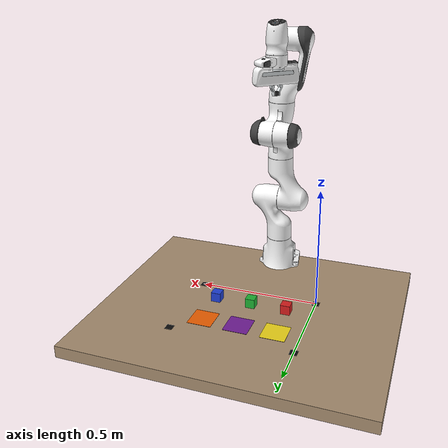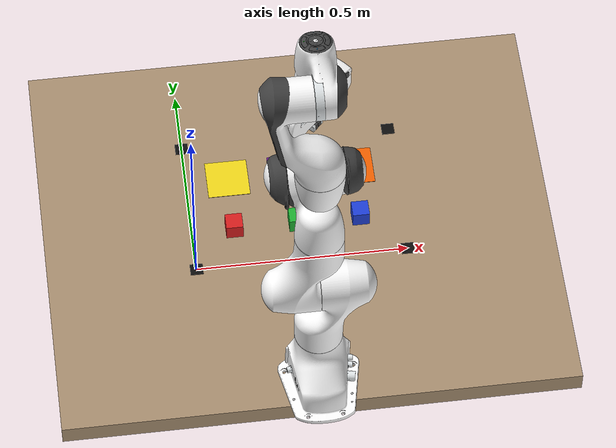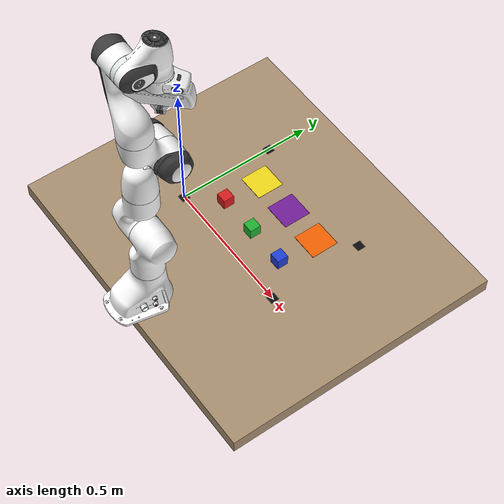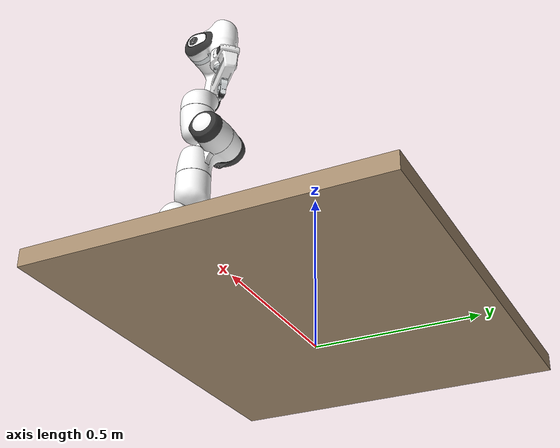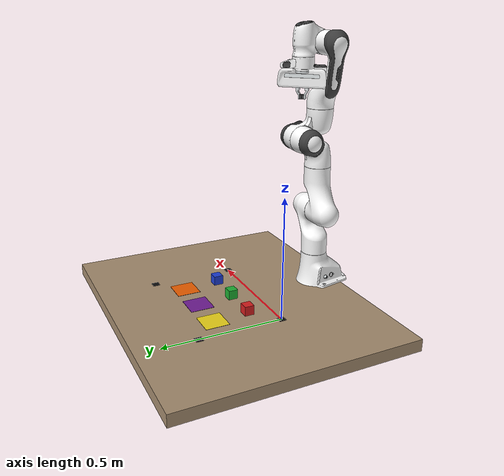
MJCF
<mujoco model="pickplace scene">
  <include file="franka_emika_panda/panda.xml"/>

  <option timestep="0.002" integrator="implicitfast" cone="elliptic" impratio="10"/>

  <visual>
    <headlight diffuse="0.25 0.25 0.25" ambient="0.25 0.25 0.25" specular="0 0 0"/>
    <global offwidth="960" offheight="960"/>
    <quality shadowsize="2048"/>
  </visual>

  <asset>
    <texture type="skybox" builtin="gradient" rgb1="0.75 0.8 0.85" rgb2="0.35 0.4 0.45" width="256" height="1536"/>
    <texture name="wood" type="2d" builtin="flat" rgb1="0.66 0.56 0.44" width="64" height="64"/>
    <material name="table" texture="wood" rgba="1 1 1 1"/>
    <material name="m_red" rgba="0.85 0.12 0.12 1"/>
    <material name="m_green" rgba="0.12 0.7 0.2 1"/>
    <material name="m_blue" rgba="0.12 0.25 0.85 1"/>
    <material name="m_yellow" rgba="0.95 0.85 0.1 1"/>
    <material name="m_purple" rgba="0.45 0.12 0.6 1"/>
    <material name="m_orange" rgba="0.95 0.38 0.0 1"/>
    <material name="marker" rgba="0.05 0.05 0.05 1"/>
  </asset>

  <default>
    <default class="cube">
      <geom type="box" size="0.02 0.02 0.02" mass="0.05" friction="1.5 0.02 0.001" condim="4"
            solref="0.004 1"/>
    </default>
    <default class="zone">
      <geom type="box" size="0.05 0.05 0.0005" contype="0" conaffinity="0"/>
    </default>
  </default>

  <worldbody>
    <light pos="0.25 0.2 1.8" dir="0 0 -1" directional="true" castshadow="true" diffuse="0.45 0.45 0.45"/>
    <body name="table" pos="0.25 0.1 -0.025">
      <geom name="table" type="box" size="0.6 0.5 0.025" material="table" friction="1 0.005 0.0001"/>
    </body>

    <!-- workspace corner markers (visual only) -->
    <geom type="box" size="0.015 0.015 0.0003" pos="0 0 0.0003" material="marker" contype="0" conaffinity="0"/>
    <geom type="box" size="0.015 0.015 0.0003" pos="0.5 0 0.0003" material="marker" contype="0" conaffinity="0"/>
    <geom type="box" size="0.015 0.015 0.0003" pos="0.5 0.35 0.0003" material="marker" contype="0" conaffinity="0"/>
    <geom type="box" size="0.015 0.015 0.0003" pos="0 0.35 0.0003" material="marker" contype="0" conaffinity="0"/>

    <!-- target zones: mocap bodies, so reset() can move them -->
    <body name="zone_yellow" mocap="true" pos="0.1 0.25 0.0005"><geom class="zone" material="m_yellow"/></body>
    <body name="zone_purple" mocap="true" pos="0.25 0.25 0.0005"><geom class="zone" material="m_purple"/></body>
    <body name="zone_orange" mocap="true" pos="0.4 0.25 0.0005"><geom class="zone" material="m_orange"/></body>

    <body name="cube_red" pos="0.1 0.1 0.02"><freejoint name="cube_red"/><geom class="cube" material="m_red"/></body>
    <body name="cube_green" pos="0.25 0.1 0.02"><freejoint name="cube_green"/><geom class="cube" material="m_green"/></body>
    <body name="cube_blue" pos="0.4 0.1 0.02"><freejoint name="cube_blue"/><geom class="cube" material="m_blue"/></body>

    <body name="cam_target" pos="0.25 0.15 0.05"/>
    <camera name="top" pos="0.25 0.175 1.2" xyaxes="1 0 0 0 1 0" fovy="45"/>
    <camera name="phone" pos="0.25 0.55 0.95" xyaxes="-1 0 0 0 -0.9251 0.3798" fovy="40"/>
    <!-- "scene" (env v2 images): framed so the workspace box (+2 cm, up to 16 cm carry height) just fills the
         square image; rendered at 512 px. Computed in NOTES.md. -->
    <camera name="scene" pos="0.25 0.55 0.95" xyaxes="-1.0000 -0.0000 0.0000 0.0000 -0.9543 0.2989" fovy="38.0"/>
    <!-- "phone_match": pose set at runtime from the real phone's ArUco-estimated pose (human/camera_match.py) -->
    <camera name="phone_match" pos="0.25 0.175 0.45" xyaxes="1 0 0 0 1 0" fovy="90"/>
    <camera name="front" pos="0.25 1.05 0.65" mode="targetbody" target="cam_target" fovy="45"/>
  </worldbody>

  <contact>
    <exclude body1="table" body2="link0"/>
    <exclude body1="table" body2="link1"/>
  </contact>
</mujoco>

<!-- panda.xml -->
<mujoco model="panda">
  <compiler angle="radian" meshdir="franka_emika_panda/assets" autolimits="true"/>

  <option integrator="implicitfast"/>

  <default>
    <default class="panda">
      <material specular="0.5" shininess="0.25"/>
      <joint armature="0.1" damping="1" axis="0 0 1" range="-2.8973 2.8973"/>
      <general dyntype="none" biastype="affine" ctrlrange="-2.8973 2.8973" forcerange="-87 87"/>
      <default class="finger">
        <joint axis="0 1 0" type="slide" range="0 0.04"/>
      </default>

      <default class="visual">
        <geom type="mesh" contype="0" conaffinity="0" group="2"/>
      </default>
      <default class="collision">
        <geom type="mesh" group="3"/>
        <default class="fingertip_pad_collision_1">
          <geom type="box" size="0.0085 0.004 0.0085" pos="0 0.0055 0.0445"/>
        </default>
        <default class="fingertip_pad_collision_2">
          <geom type="box" size="0.003 0.002 0.003" pos="0.0055 0.002 0.05"/>
        </default>
        <default class="fingertip_pad_collision_3">
          <geom type="box" size="0.003 0.002 0.003" pos="-0.0055 0.002 0.05"/>
        </default>
        <default class="fingertip_pad_collision_4">
          <geom type="box" size="0.003 0.002 0.0035" pos="0.0055 0.002 0.0395"/>
        </default>
        <default class="fingertip_pad_collision_5">
          <geom type="box" size="0.003 0.002 0.0035" pos="-0.0055 0.002 0.0395"/>
        </default>
      </default>
    </default>
  </default>

  <asset>
    <material class="panda" name="white" rgba="1 1 1 1"/>
    <material class="panda" name="off_white" rgba="0.901961 0.921569 0.929412 1"/>
    <material class="panda" name="black" rgba="0.25 0.25 0.25 1"/>
    <material class="panda" name="green" rgba="0 1 0 1"/>
    <material class="panda" name="light_blue" rgba="0.039216 0.541176 0.780392 1"/>

    <!-- Collision meshes -->
    <mesh name="link0_c" file="link0.stl"/>
    <mesh name="link1_c" file="link1.stl"/>
    <mesh name="link2_c" file="link2.stl"/>
    <mesh name="link3_c" file="link3.stl"/>
    <mesh name="link4_c" file="link4.stl"/>
    <mesh name="link5_c0" file="link5_collision_0.obj"/>
    <mesh name="link5_c1" file="link5_collision_1.obj"/>
    <mesh name="link5_c2" file="link5_collision_2.obj"/>
    <mesh name="link6_c" file="link6.stl"/>
    <mesh name="link7_c" file="link7.stl"/>
    <mesh name="hand_c" file="hand.stl"/>

    <!-- Visual meshes -->
    <mesh file="link0_0.obj"/>
    <mesh file="link0_1.obj"/>
    <mesh file="link0_2.obj"/>
    <mesh file="link0_3.obj"/>
    <mesh file="link0_4.obj"/>
    <mesh file="link0_5.obj"/>
    <mesh file="link0_7.obj"/>
    <mesh file="link0_8.obj"/>
    <mesh file="link0_9.obj"/>
    <mesh file="link0_10.obj"/>
    <mesh file="link0_11.obj"/>
    <mesh file="link1.obj"/>
    <mesh file="link2.obj"/>
    <mesh file="link3_0.obj"/>
    <mesh file="link3_1.obj"/>
    <mesh file="link3_2.obj"/>
    <mesh file="link3_3.obj"/>
    <mesh file="link4_0.obj"/>
    <mesh file="link4_1.obj"/>
    <mesh file="link4_2.obj"/>
    <mesh file="link4_3.obj"/>
    <mesh file="link5_0.obj"/>
    <mesh file="link5_1.obj"/>
    <mesh file="link5_2.obj"/>
    <mesh file="link6_0.obj"/>
    <mesh file="link6_1.obj"/>
    <mesh file="link6_2.obj"/>
    <mesh file="link6_3.obj"/>
    <mesh file="link6_4.obj"/>
    <mesh file="link6_5.obj"/>
    <mesh file="link6_6.obj"/>
    <mesh file="link6_7.obj"/>
    <mesh file="link6_8.obj"/>
    <mesh file="link6_9.obj"/>
    <mesh file="link6_10.obj"/>
    <mesh file="link6_11.obj"/>
    <mesh file="link6_12.obj"/>
    <mesh file="link6_13.obj"/>
    <mesh file="link6_14.obj"/>
    <mesh file="link6_15.obj"/>
    <mesh file="link6_16.obj"/>
    <mesh file="link7_0.obj"/>
    <mesh file="link7_1.obj"/>
    <mesh file="link7_2.obj"/>
    <mesh file="link7_3.obj"/>
    <mesh file="link7_4.obj"/>
    <mesh file="link7_5.obj"/>
    <mesh file="link7_6.obj"/>
    <mesh file="link7_7.obj"/>
    <mesh file="hand_0.obj"/>
    <mesh file="hand_1.obj"/>
    <mesh file="hand_2.obj"/>
    <mesh file="hand_3.obj"/>
    <mesh file="hand_4.obj"/>
    <mesh file="finger_0.obj"/>
    <mesh file="finger_1.obj"/>
  </asset>

  <worldbody>
    <light name="top" pos="0 0 2" mode="trackcom"/>
    <body name="link0" childclass="panda" pos="0.25 -0.3 0" quat="0.7071068 0 0 0.7071068">
      <inertial mass="0.629769" pos="-0.041018 -0.00014 0.049974"
        fullinertia="0.00315 0.00388 0.004285 8.2904e-7 0.00015 8.2299e-6"/>
      <geom mesh="link0_0" material="off_white" class="visual"/>
      <geom mesh="link0_1" material="black" class="visual"/>
      <geom mesh="link0_2" material="off_white" class="visual"/>
      <geom mesh="link0_3" material="black" class="visual"/>
      <geom mesh="link0_4" material="off_white" class="visual"/>
      <geom mesh="link0_5" material="black" class="visual"/>
      <geom mesh="link0_7" material="white" class="visual"/>
      <geom mesh="link0_8" material="white" class="visual"/>
      <geom mesh="link0_9" material="black" class="visual"/>
      <geom mesh="link0_10" material="off_white" class="visual"/>
      <geom mesh="link0_11" material="white" class="visual"/>
      <geom mesh="link0_c" class="collision"/>
      <body name="link1" pos="0 0 0.333">
        <inertial mass="4.970684" pos="0.003875 0.002081 -0.04762"
          fullinertia="0.70337 0.70661 0.0091170 -0.00013900 0.0067720 0.019169"/>
        <joint name="joint1"/>
        <geom material="white" mesh="link1" class="visual"/>
        <geom mesh="link1_c" class="collision"/>
        <body name="link2" quat="1 -1 0 0">
          <inertial mass="0.646926" pos="-0.003141 -0.02872 0.003495"
            fullinertia="0.0079620 2.8110e-2 2.5995e-2 -3.925e-3 1.0254e-2 7.04e-4"/>
          <joint name="joint2" range="-1.7628 1.7628"/>
          <geom material="white" mesh="link2" class="visual"/>
          <geom mesh="link2_c" class="collision"/>
          <body name="link3" pos="0 -0.316 0" quat="1 1 0 0">
            <joint name="joint3"/>
            <inertial mass="3.228604" pos="2.7518e-2 3.9252e-2 -6.6502e-2"
              fullinertia="3.7242e-2 3.6155e-2 1.083e-2 -4.761e-3 -1.1396e-2 -1.2805e-2"/>
            <geom mesh="link3_0" material="white" class="visual"/>
            <geom mesh="link3_1" material="white" class="visual"/>
            <geom mesh="link3_2" material="white" class="visual"/>
            <geom mesh="link3_3" material="black" class="visual"/>
            <geom mesh="link3_c" class="collision"/>
            <body name="link4" pos="0.0825 0 0" quat="1 1 0 0">
              <inertial mass="3.587895" pos="-5.317e-2 1.04419e-1 2.7454e-2"
                fullinertia="2.5853e-2 1.9552e-2 2.8323e-2 7.796e-3 -1.332e-3 8.641e-3"/>
              <joint name="joint4" range="-3.0718 -0.0698"/>
              <geom mesh="link4_0" material="white" class="visual"/>
              <geom mesh="link4_1" material="white" class="visual"/>
              <geom mesh="link4_2" material="black" class="visual"/>
              <geom mesh="link4_3" material="white" class="visual"/>
              <geom mesh="link4_c" class="collision"/>
              <body name="link5" pos="-0.0825 0.384 0" quat="1 -1 0 0">
                <inertial mass="1.225946" pos="-1.1953e-2 4.1065e-2 -3.8437e-2"
                  fullinertia="3.5549e-2 2.9474e-2 8.627e-3 -2.117e-3 -4.037e-3 2.29e-4"/>
                <joint name="joint5"/>
                <geom mesh="link5_0" material="black" class="visual"/>
                <geom mesh="link5_1" material="white" class="visual"/>
                <geom mesh="link5_2" material="white" class="visual"/>
                <geom mesh="link5_c0" class="collision"/>
                <geom mesh="link5_c1" class="collision"/>
                <geom mesh="link5_c2" class="collision"/>
                <body name="link6" quat="1 1 0 0">
                  <inertial mass="1.666555" pos="6.0149e-2 -1.4117e-2 -1.0517e-2"
                    fullinertia="1.964e-3 4.354e-3 5.433e-3 1.09e-4 -1.158e-3 3.41e-4"/>
                  <joint name="joint6" range="-0.0175 3.7525"/>
                  <geom mesh="link6_0" material="off_white" class="visual"/>
                  <geom mesh="link6_1" material="white" class="visual"/>
                  <geom mesh="link6_2" material="black" class="visual"/>
                  <geom mesh="link6_3" material="white" class="visual"/>
                  <geom mesh="link6_4" material="white" class="visual"/>
                  <geom mesh="link6_5" material="white" class="visual"/>
                  <geom mesh="link6_6" material="white" class="visual"/>
                  <geom mesh="link6_7" material="light_blue" class="visual"/>
                  <geom mesh="link6_8" material="light_blue" class="visual"/>
                  <geom mesh="link6_9" material="black" class="visual"/>
                  <geom mesh="link6_10" material="black" class="visual"/>
                  <geom mesh="link6_11" material="white" class="visual"/>
                  <geom mesh="link6_12" material="green" class="visual"/>
                  <geom mesh="link6_13" material="white" class="visual"/>
                  <geom mesh="link6_14" material="black" class="visual"/>
                  <geom mesh="link6_15" material="black" class="visual"/>
                  <geom mesh="link6_16" material="white" class="visual"/>
                  <geom mesh="link6_c" class="collision"/>
                  <body name="link7" pos="0.088 0 0" quat="1 1 0 0">
                    <inertial mass="7.35522e-01" pos="1.0517e-2 -4.252e-3 6.1597e-2"
                      fullinertia="1.2516e-2 1.0027e-2 4.815e-3 -4.28e-4 -1.196e-3 -7.41e-4"/>
                    <joint name="joint7"/>
                    <geom mesh="link7_0" material="white" class="visual"/>
                    <geom mesh="link7_1" material="black" class="visual"/>
                    <geom mesh="link7_2" material="black" class="visual"/>
                    <geom mesh="link7_3" material="black" class="visual"/>
                    <geom mesh="link7_4" material="black" class="visual"/>
                    <geom mesh="link7_5" material="black" class="visual"/>
                    <geom mesh="link7_6" material="black" class="visual"/>
                    <geom mesh="link7_7" material="white" class="visual"/>
                    <geom mesh="link7_c" class="collision"/>
                    <body name="hand" pos="0 0 0.107" quat="0.9238795 0 0 -0.3826834">
                      <inertial mass="0.73" pos="-0.01 0 0.03" diaginertia="0.001 0.0025 0.0017"/>
                      <geom mesh="hand_0" material="off_white" class="visual"/>
                      <geom mesh="hand_1" material="black" class="visual"/>
                      <geom mesh="hand_2" material="black" class="visual"/>
                      <geom mesh="hand_3" material="white" class="visual"/>
                      <geom mesh="hand_4" material="off_white" class="visual"/>
                      <geom mesh="hand_c" class="collision"/>
                      <camera name="wrist" pos="0.05 0 0.045" xyaxes="0.0000 1.0000 0.0000 0.8619 -0.0000 0.5070" fovy="75"/>
                      <site name="ee" pos="0 0 0.1034" size="0.005" rgba="1 0 0 0.5" group="4"/>
                      <body name="left_finger" pos="0 0 0.0584">
                        <inertial mass="0.015" pos="0 0 0" diaginertia="2.375e-6 2.375e-6 7.5e-7"/>
                        <joint name="finger_joint1" class="finger"/>
                        <geom mesh="finger_0" material="off_white" class="visual"/>
                        <geom mesh="finger_1" material="black" class="visual"/>
                        <geom mesh="finger_0" class="collision"/>
                        <geom class="fingertip_pad_collision_1"/>
                        <geom class="fingertip_pad_collision_2"/>
                        <geom class="fingertip_pad_collision_3"/>
                        <geom class="fingertip_pad_collision_4"/>
                        <geom class="fingertip_pad_collision_5"/>
                      </body>
                      <body name="right_finger" pos="0 0 0.0584" quat="0 0 0 1">
                        <inertial mass="0.015" pos="0 0 0" diaginertia="2.375e-6 2.375e-6 7.5e-7"/>
                        <joint name="finger_joint2" class="finger"/>
                        <geom mesh="finger_0" material="off_white" class="visual"/>
                        <geom mesh="finger_1" material="black" class="visual"/>
                        <geom mesh="finger_0" class="collision"/>
                        <geom class="fingertip_pad_collision_1"/>
                        <geom class="fingertip_pad_collision_2"/>
                        <geom class="fingertip_pad_collision_3"/>
                        <geom class="fingertip_pad_collision_4"/>
                        <geom class="fingertip_pad_collision_5"/>
                      </body>
                    </body>
                  </body>
                </body>
              </body>
            </body>
          </body>
        </body>
      </body>
    </body>
  </worldbody>

  <tendon>
    <fixed name="split">
      <joint joint="finger_joint1" coef="0.5"/>
      <joint joint="finger_joint2" coef="0.5"/>
    </fixed>
  </tendon>

  <equality>
    <joint joint1="finger_joint1" joint2="finger_joint2" solimp="0.95 0.99 0.001" solref="0.005 1"/>
  </equality>

  <actuator>
    <general class="panda" name="actuator1" joint="joint1" gainprm="4500" biasprm="0 -4500 -450"/>
    <general class="panda" name="actuator2" joint="joint2" gainprm="4500" biasprm="0 -4500 -450"
      ctrlrange="-1.7628 1.7628"/>
    <general class="panda" name="actuator3" joint="joint3" gainprm="3500" biasprm="0 -3500 -350"/>
    <general class="panda" name="actuator4" joint="joint4" gainprm="3500" biasprm="0 -3500 -350"
      ctrlrange="-3.0718 -0.0698"/>
    <general class="panda" name="actuator5" joint="joint5" gainprm="2000" biasprm="0 -2000 -200" forcerange="-12 12"/>
    <general class="panda" name="actuator6" joint="joint6" gainprm="2000" biasprm="0 -2000 -200" forcerange="-12 12"
      ctrlrange="-0.0175 3.7525"/>
    <general class="panda" name="actuator7" joint="joint7" gainprm="2000" biasprm="0 -2000 -200" forcerange="-12 12"/>
    <!-- Remap original ctrlrange (0, 0.04) to (0, 255): 0.04 * 100 / 255 = 0.01568627451 -->
    <general class="panda" name="actuator8" tendon="split" forcerange="-100 100" ctrlrange="0 255"
      gainprm="0.01568627451 0 0" biasprm="0 -100 -10"/>
  </actuator>

  <keyframe>
    <key name="home" qpos="0 0 0 -1.57079 0 1.57079 -0.7853 0.04 0.04" ctrl="0 0 0 -1.57079 0 1.57079 -0.7853 255"/>
  </keyframe>

  <contact>
    <exclude body1="link0" body2="link1"/>
  </contact>
</mujoco>
